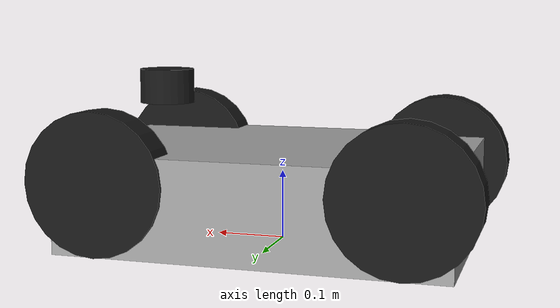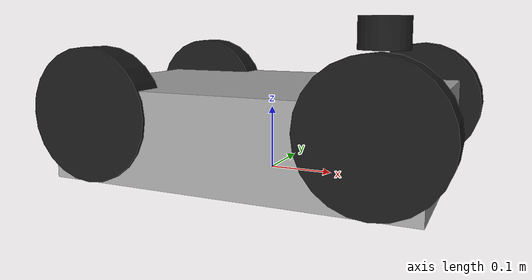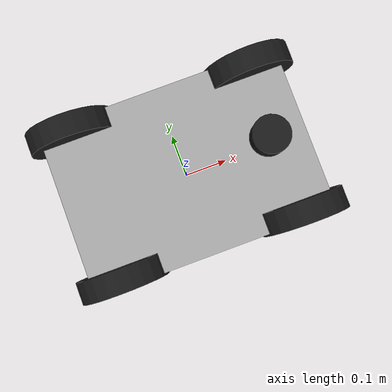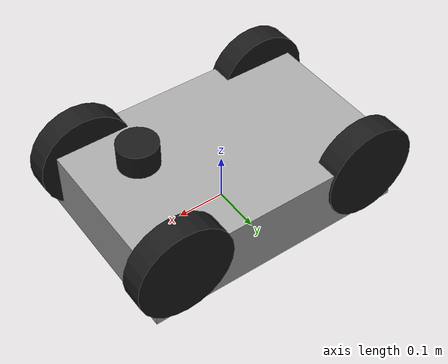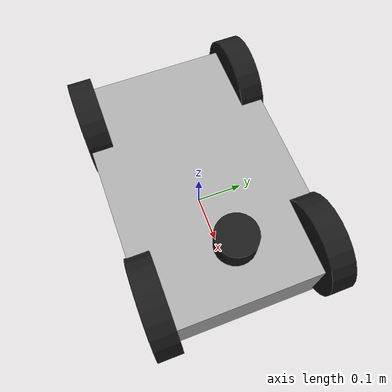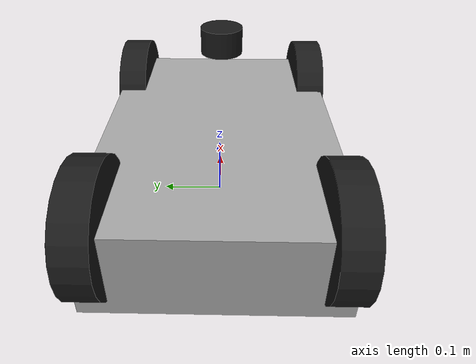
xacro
<?xml version="1.0"?>
<robot xmlns:xacro="http://www.ros.org/wiki/xacro" name="quad_ugv">

  <!-- ROS REP-103: x forward, y left, z up -->
  <xacro:property name="pi" value="3.141592653589793"/>

  <!-- Chassis -->
  <xacro:property name="base_length" value="0.55"/>
  <xacro:property name="base_width"  value="0.38"/>
  <xacro:property name="base_height" value="0.14"/>

  <!-- Wheel + geometry -->
  <xacro:property name="wheel_radius" value="0.10"/>
  <xacro:property name="wheel_width"  value="0.05"/>
  <xacro:property name="track"        value="0.34"/>  <!-- left-right wheel center distance -->
  <xacro:property name="wheelbase"    value="0.42"/>  <!-- front-rear wheel center distance -->

  <material name="Grey"><color rgba="0.65 0.65 0.65 1"/></material>
  <material name="Black"><color rgba="0.10 0.10 0.10 1"/></material>

  <!-- base_link -->
  <link name="base_link">
    <inertial>
      <origin xyz="0 0 ${base_height/2.0}" rpy="0 0 0"/>
      <mass value="18.0"/>
      <inertia ixx="0.50" ixy="0" ixz="0" iyy="0.80" iyz="0" izz="1.00"/>
    </inertial>
    <visual>
      <origin xyz="0 0 ${base_height/2.0}" rpy="0 0 0"/>
      <geometry><box size="${base_length} ${base_width} ${base_height}"/></geometry>
      <material name="Grey"/>
    </visual>
    <collision>
      <origin xyz="0 0 ${base_height/2.0}" rpy="0 0 0"/>
      <geometry><box size="${base_length} ${base_width} ${base_height}"/></geometry>
    </collision>
  </link>

  <!-- Wheel macro: IMPORTANT PART
       Cylinder default axis is Z. Wheels should rotate about Y (axle along Y).
       So we rotate cylinder by +90deg about X to align cylinder axis Z -> Y. -->
  <xacro:macro name="wheel" params="name x y">
    <link name="${name}_link">
      <inertial>
        <origin xyz="0 0 0" rpy="0 0 0"/>
        <mass value="1.2"/>
        <inertia ixx="0.01" ixy="0" ixz="0" iyy="0.01" iyz="0" izz="0.01"/>
      </inertial>

      <visual>
        <origin xyz="0 0 0" rpy="${pi/2.0} 0 0"/>
        <geometry><cylinder radius="${wheel_radius}" length="${wheel_width}"/></geometry>
        <material name="Black"/>
      </visual>
      <collision>
        <origin xyz="0 0 0" rpy="${pi/2.0} 0 0"/>
        <geometry><cylinder radius="${wheel_radius}" length="${wheel_width}"/></geometry>
      </collision>
    </link>

    <joint name="${name}_joint" type="continuous">
      <parent link="base_link"/>
      <child link="${name}_link"/>
      <origin xyz="${x} ${y} ${wheel_radius}" rpy="0 0 0"/>
      <axis xyz="0 1 0"/>
    </joint>

    <!-- Contact tuning to stop wobble/coin-flip -->
    <gazebo reference="${name}_link">
      <mu1>2.0</mu1>
      <mu2>2.0</mu2>
      <kp>2e6</kp>
      <kd>5</kd>
    </gazebo>
  </xacro:macro>

  <!-- 4 wheels -->
  <xacro:wheel name="front_left"  x="${ wheelbase/2.0}" y="${ track/2.0}"/>
  <xacro:wheel name="front_right" x="${ wheelbase/2.0}" y="-${track/2.0}"/>
  <xacro:wheel name="rear_left"   x="-${wheelbase/2.0}" y="${ track/2.0}"/>
  <xacro:wheel name="rear_right"  x="-${wheelbase/2.0}" y="-${track/2.0}"/>

  <!-- LiDAR -->
  <link name="lidar_link">
    <visual>
      <geometry><cylinder radius="0.04" length="0.05"/></geometry>
      <material name="Black"/>
    </visual>
  </link>
  <joint name="lidar_joint" type="fixed">
    <parent link="base_link"/>
    <child link="lidar_link"/>
    <origin xyz="0.18 0 0.22" rpy="0 0 0"/>
  </joint>

  <!-- Skid-steer drive plugin (gz-sim) -->
  <gazebo>
    <plugin filename="libignition-gazebo-diff-drive-system.so" name="gz::sim::systems::SkidSteerDrive">
      <left_front_joint>front_left_joint</left_front_joint>
      <right_front_joint>front_right_joint</right_front_joint>
      <left_rear_joint>rear_left_joint</left_rear_joint>
      <right_rear_joint>rear_right_joint</right_rear_joint>

      <wheel_separation>${track}</wheel_separation>
      <wheel_base>${wheelbase}</wheel_base>
      <wheel_radius>${wheel_radius}</wheel_radius>

      <topic>/cmd_vel</topic>
      <odom_topic>/odom</odom_topic>
      <frame_id>odom</frame_id>
      <child_frame_id>base_link</child_frame_id>
      <odom_publish_frequency>30</odom_publish_frequency>
    </plugin>
  </gazebo>

  <!-- LiDAR sensor -->
  <gazebo reference="lidar_link">
    <sensor name="lidar" type="gpu_ray">
      <update_rate>10</update_rate>
      <ray>
        <scan>
          <horizontal>
            <samples>720</samples>
            <min_angle>-3.14159</min_angle>
            <max_angle>3.14159</max_angle>
          </horizontal>
        </scan>
        <range>
          <min>0.12</min>
          <max>12.0</max>
        </range>
      </ray>
      <topic>/scan</topic>
      <visualize>true</visualize>
    </sensor>
  </gazebo>

</robot>
